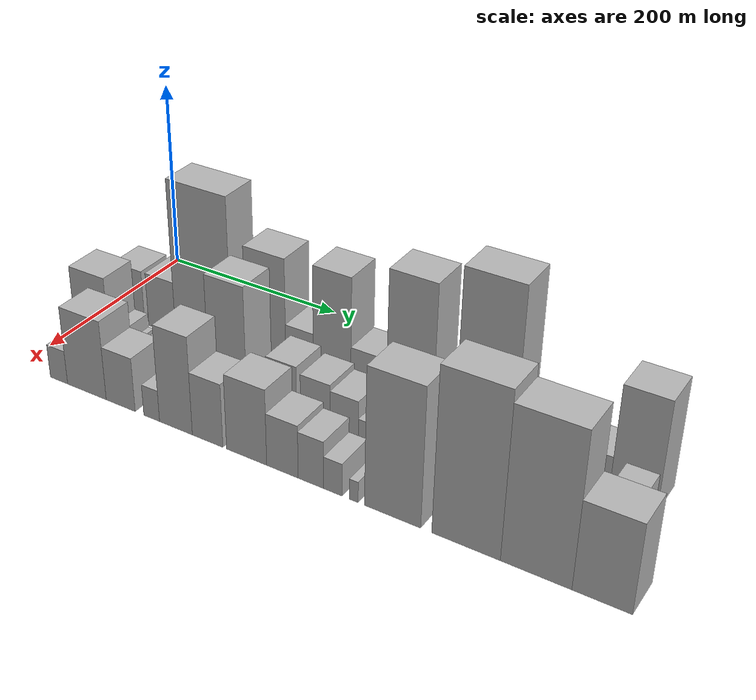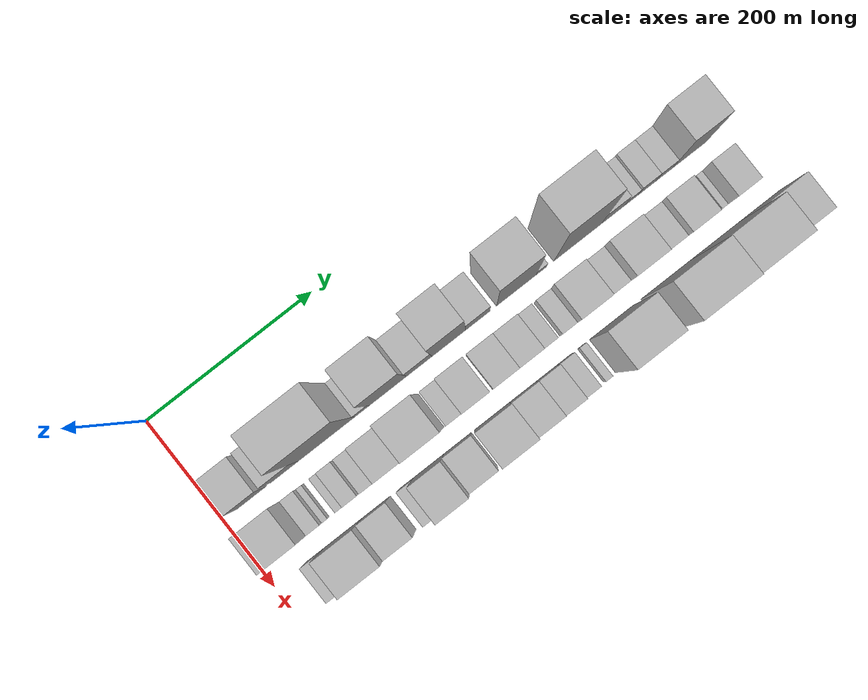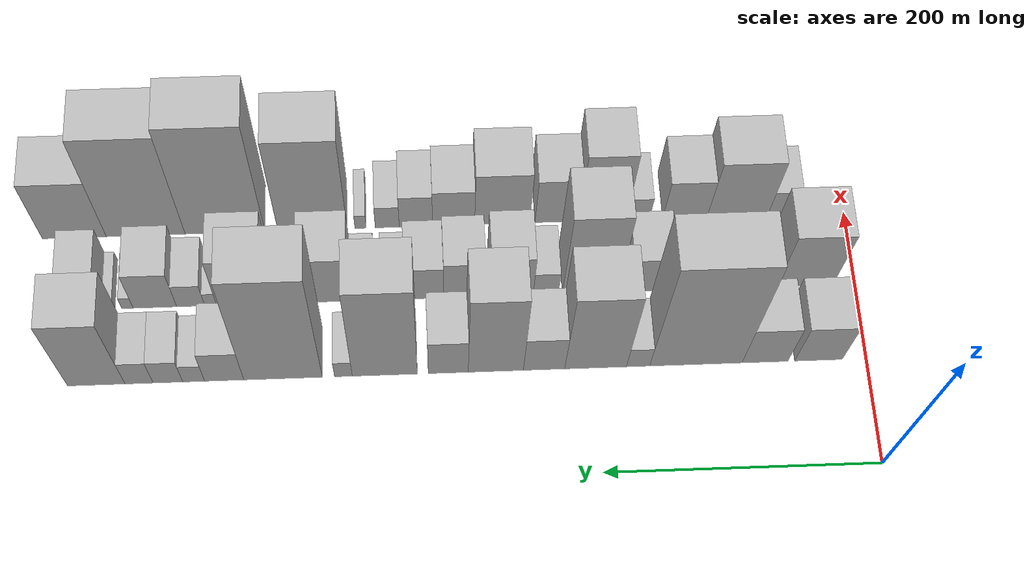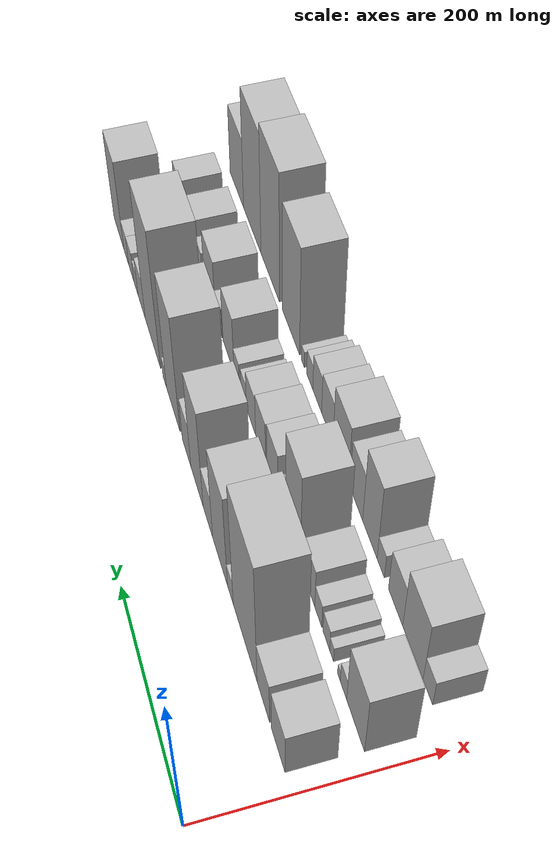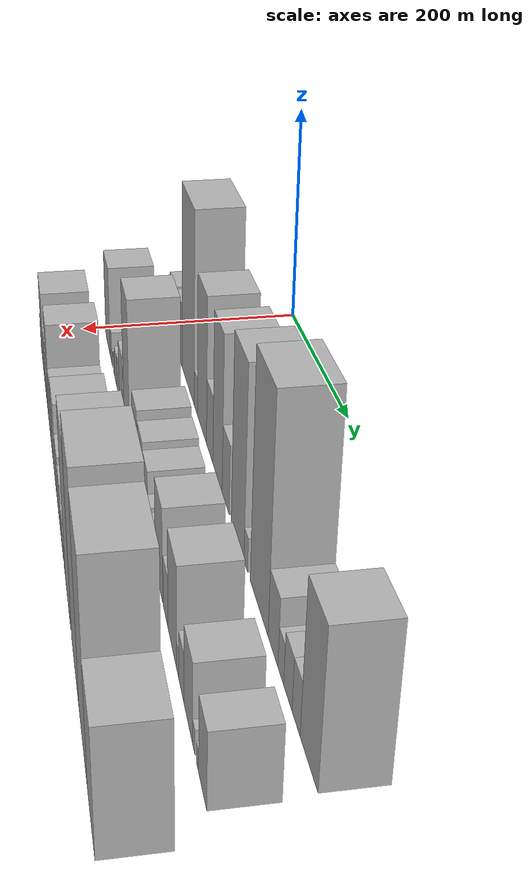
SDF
<sdf version="1.6">
 <world name="default">
  <model name="building_18">
   <static>1</static>
   <pose>100.0000 35.1680 0 0.000000 0.000000 0.000000</pose>
   <link name="link">
    <pose>0 0 30.00 0 0 0</pose>
    <collision name="collision"><geometry><box><size>40.0000 35.2167 60.0000</size></box></geometry></collision>
    <visual name="visual">
     <cast_shadows>0</cast_shadows>
     <geometry><box><size>40.0000 35.2167 60.0000</size></box></geometry>
     <material>
      <script>
       <uri>model://HANNAS_wall/materials/scripts</uri>
       <uri>model://HANNAS_wall/materials/textures</uri>
       <name>vrc/HANNAS_wall</name>
      </script>
     </material>
    </visual>
   </link>
  </model>
  <model name="building_19">
   <static>1</static>
   <pose>100.0000 74.7181 0 0.000000 0.000000 0.000000</pose>
   <link name="link">
    <pose>0 0 30.00 0 0 0</pose>
    <collision name="collision"><geometry><box><size>40.0000 33.8835 60.0000</size></box></geometry></collision>
    <visual name="visual">
     <cast_shadows>0</cast_shadows>
     <geometry><box><size>40.0000 33.8835 60.0000</size></box></geometry>
     <material>
      <script>
       <uri>model://HANNAS_wall/materials/scripts</uri>
       <uri>model://HANNAS_wall/materials/textures</uri>
       <name>vrc/HANNAS_wall</name>
      </script>
     </material>
    </visual>
   </link>
  </model>
  <model name="building_20">
   <static>1</static>
   <pose>100.0000 125.6870 0 0.000000 0.000000 0.000000</pose>
   <link name="link">
    <pose>0 0 85.50 0 0 0</pose>
    <collision name="collision"><geometry><box><size>40.0000 68.0544 171.0000</size></box></geometry></collision>
    <visual name="visual">
     <cast_shadows>0</cast_shadows>
     <geometry><box><size>40.0000 68.0544 171.0000</size></box></geometry>
     <material>
      <script>
       <uri>model://HANNAS_wall/materials/scripts</uri>
       <uri>model://HANNAS_wall/materials/textures</uri>
       <name>vrc/HANNAS_wall</name>
      </script>
     </material>
    </visual>
   </link>
  </model>
  <model name="building_21">
   <static>1</static>
   <pose>100.0000 168.3000 0 0.000000 0.000000 0.000000</pose>
   <link name="link">
    <pose>0 0 16.50 0 0 0</pose>
    <collision name="collision"><geometry><box><size>40.0000 17.1716 33.0000</size></box></geometry></collision>
    <visual name="visual">
     <cast_shadows>0</cast_shadows>
     <geometry><box><size>40.0000 17.1716 33.0000</size></box></geometry>
     <material>
      <script>
       <uri>model://HANNAS_wall/materials/scripts</uri>
       <uri>model://HANNAS_wall/materials/textures</uri>
       <name>vrc/HANNAS_wall</name>
      </script>
     </material>
    </visual>
   </link>
  </model>
  <model name="building_22">
   <static>1</static>
   <pose>100.0000 199.6199 0 0.000000 0.000000 0.000000</pose>
   <link name="link">
    <pose>0 0 63.00 0 0 0</pose>
    <collision name="collision"><geometry><box><size>40.0000 45.4680 126.0000</size></box></geometry></collision>
    <visual name="visual">
     <cast_shadows>0</cast_shadows>
     <geometry><box><size>40.0000 45.4680 126.0000</size></box></geometry>
     <material>
      <script>
       <uri>model://HANNAS_wall/materials/scripts</uri>
       <uri>model://HANNAS_wall/materials/textures</uri>
       <name>vrc/HANNAS_wall</name>
      </script>
     </material>
    </visual>
   </link>
  </model>
  <model name="building_23">
   <static>1</static>
   <pose>100.0000 237.5084 0 0.000000 0.000000 0.000000</pose>
   <link name="link">
    <pose>0 0 28.50 0 0 0</pose>
    <collision name="collision"><geometry><box><size>40.0000 30.3090 57.0000</size></box></geometry></collision>
    <visual name="visual">
     <cast_shadows>0</cast_shadows>
     <geometry><box><size>40.0000 30.3090 57.0000</size></box></geometry>
     <material>
      <script>
       <uri>model://HANNAS_wall/materials/scripts</uri>
       <uri>model://HANNAS_wall/materials/textures</uri>
       <name>vrc/HANNAS_wall</name>
      </script>
     </material>
    </visual>
   </link>
  </model>
  <model name="building_24">
   <static>1</static>
   <pose>100.0000 272.9096 0 0.000000 0.000000 0.000000</pose>
   <link name="link">
    <pose>0 0 64.50 0 0 0</pose>
    <collision name="collision"><geometry><box><size>40.0000 40.4933 129.0000</size></box></geometry></collision>
    <visual name="visual">
     <cast_shadows>0</cast_shadows>
     <geometry><box><size>40.0000 40.4933 129.0000</size></box></geometry>
     <material>
      <script>
       <uri>model://HANNAS_wall/materials/scripts</uri>
       <uri>model://HANNAS_wall/materials/textures</uri>
       <name>vrc/HANNAS_wall</name>
      </script>
     </material>
    </visual>
   </link>
  </model>
  <model name="building_25">
   <static>1</static>
   <pose>100.0000 307.8030 0 0.000000 0.000000 0.000000</pose>
   <link name="link">
    <pose>0 0 28.50 0 0 0</pose>
    <collision name="collision"><geometry><box><size>40.0000 29.2936 57.0000</size></box></geometry></collision>
    <visual name="visual">
     <cast_shadows>0</cast_shadows>
     <geometry><box><size>40.0000 29.2936 57.0000</size></box></geometry>
     <material>
      <script>
       <uri>model://HANNAS_wall/materials/scripts</uri>
       <uri>model://HANNAS_wall/materials/textures</uri>
       <name>vrc/HANNAS_wall</name>
      </script>
     </material>
    </visual>
   </link>
  </model>
  <model name="building_26">
   <static>1</static>
   <pose>100.0000 354.2889 0 0.000000 0.000000 0.000000</pose>
   <link name="link">
    <pose>0 0 75.00 0 0 0</pose>
    <collision name="collision"><geometry><box><size>40.0000 47.6782 150.0000</size></box></geometry></collision>
    <visual name="visual">
     <cast_shadows>0</cast_shadows>
     <geometry><box><size>40.0000 47.6782 150.0000</size></box></geometry>
     <material>
      <script>
       <uri>model://HANNAS_wall/materials/scripts</uri>
       <uri>model://HANNAS_wall/materials/textures</uri>
       <name>vrc/HANNAS_wall</name>
      </script>
     </material>
    </visual>
   </link>
  </model>
  <model name="building_27">
   <static>1</static>
   <pose>100.0000 384.5869 0 0.000000 0.000000 0.000000</pose>
   <link name="link">
    <pose>0 0 13.50 0 0 0</pose>
    <collision name="collision"><geometry><box><size>40.0000 12.9178 27.0000</size></box></geometry></collision>
    <visual name="visual">
     <cast_shadows>0</cast_shadows>
     <geometry><box><size>40.0000 12.9178 27.0000</size></box></geometry>
     <material>
      <script>
       <uri>model://HANNAS_wall/materials/scripts</uri>
       <uri>model://HANNAS_wall/materials/textures</uri>
       <name>vrc/HANNAS_wall</name>
      </script>
     </material>
    </visual>
   </link>
  </model>
  <model name="building_28">
   <static>1</static>
   <pose>100.0000 428.7757 0 0.000000 0.000000 0.000000</pose>
   <link name="link">
    <pose>0 0 87.00 0 0 0</pose>
    <collision name="collision"><geometry><box><size>40.0000 57.4597 174.0000</size></box></geometry></collision>
    <visual name="visual">
     <cast_shadows>0</cast_shadows>
     <geometry><box><size>40.0000 57.4597 174.0000</size></box></geometry>
     <material>
      <script>
       <uri>model://HANNAS_wall/materials/scripts</uri>
       <uri>model://HANNAS_wall/materials/textures</uri>
       <name>vrc/HANNAS_wall</name>
      </script>
     </material>
    </visual>
   </link>
  </model>
  <model name="building_29">
   <static>1</static>
   <pose>100.0000 471.7689 0 0.000000 0.000000 0.000000</pose>
   <link name="link">
    <pose>0 0 25.50 0 0 0</pose>
    <collision name="collision"><geometry><box><size>40.0000 28.5268 51.0000</size></box></geometry></collision>
    <visual name="visual">
     <cast_shadows>0</cast_shadows>
     <geometry><box><size>40.0000 28.5268 51.0000</size></box></geometry>
     <material>
      <script>
       <uri>model://HANNAS_wall/materials/scripts</uri>
       <uri>model://HANNAS_wall/materials/textures</uri>
       <name>vrc/HANNAS_wall</name>
      </script>
     </material>
    </visual>
   </link>
  </model>
  <model name="building_30">
   <static>1</static>
   <pose>100.0000 494.0220 0 0.000000 0.000000 0.000000</pose>
   <link name="link">
    <pose>0 0 15.00 0 0 0</pose>
    <collision name="collision"><geometry><box><size>40.0000 15.9793 30.0000</size></box></geometry></collision>
    <visual name="visual">
     <cast_shadows>0</cast_shadows>
     <geometry><box><size>40.0000 15.9793 30.0000</size></box></geometry>
     <material>
      <script>
       <uri>model://HANNAS_wall/materials/scripts</uri>
       <uri>model://HANNAS_wall/materials/textures</uri>
       <name>vrc/HANNAS_wall</name>
      </script>
     </material>
    </visual>
   </link>
  </model>
  <model name="building_31">
   <static>1</static>
   <pose>100.0000 512.8624 0 0.000000 0.000000 0.000000</pose>
   <link name="link">
    <pose>0 0 19.50 0 0 0</pose>
    <collision name="collision"><geometry><box><size>40.0000 21.7016 39.0000</size></box></geometry></collision>
    <visual name="visual">
     <cast_shadows>0</cast_shadows>
     <geometry><box><size>40.0000 21.7016 39.0000</size></box></geometry>
     <material>
      <script>
       <uri>model://HANNAS_wall/materials/scripts</uri>
       <uri>model://HANNAS_wall/materials/textures</uri>
       <name>vrc/HANNAS_wall</name>
      </script>
     </material>
    </visual>
   </link>
  </model>
  <model name="building_32">
   <static>1</static>
   <pose>100.0000 533.9631 0 0.000000 0.000000 0.000000</pose>
   <link name="link">
    <pose>0 0 19.50 0 0 0</pose>
    <collision name="collision"><geometry><box><size>40.0000 20.4997 39.0000</size></box></geometry></collision>
    <visual name="visual">
     <cast_shadows>0</cast_shadows>
     <geometry><box><size>40.0000 20.4997 39.0000</size></box></geometry>
     <material>
      <script>
       <uri>model://HANNAS_wall/materials/scripts</uri>
       <uri>model://HANNAS_wall/materials/textures</uri>
       <name>vrc/HANNAS_wall</name>
      </script>
     </material>
    </visual>
   </link>
  </model>
  <model name="building_33">
   <static>1</static>
   <pose>100.0000 565.1274 0 0.000000 0.000000 0.000000</pose>
   <link name="link">
    <pose>0 0 55.50 0 0 0</pose>
    <collision name="collision"><geometry><box><size>40.0000 41.8290 111.0000</size></box></geometry></collision>
    <visual name="visual">
     <cast_shadows>0</cast_shadows>
     <geometry><box><size>40.0000 41.8290 111.0000</size></box></geometry>
     <material>
      <script>
       <uri>model://HANNAS_wall/materials/scripts</uri>
       <uri>model://HANNAS_wall/materials/textures</uri>
       <name>vrc/HANNAS_wall</name>
      </script>
     </material>
    </visual>
   </link>
  </model>
  <model name="building_51">
   <static>1</static>
   <pose>160.0000 37.7399 0 0.000000 0.000000 0.000000</pose>
   <link name="link">
    <pose>0 0 42.00 0 0 0</pose>
    <collision name="collision"><geometry><box><size>40.0000 42.5352 84.0000</size></box></geometry></collision>
    <visual name="visual">
     <cast_shadows>0</cast_shadows>
     <geometry><box><size>40.0000 42.5352 84.0000</size></box></geometry>
     <material>
      <script>
       <uri>model://HANNAS_wall/materials/scripts</uri>
       <uri>model://HANNAS_wall/materials/textures</uri>
       <name>vrc/HANNAS_wall</name>
      </script>
     </material>
    </visual>
   </link>
  </model>
  <model name="building_52">
   <static>1</static>
   <pose>160.0000 66.9542 0 0.000000 0.000000 0.000000</pose>
   <link name="link">
    <pose>0 0 15.00 0 0 0</pose>
    <collision name="collision"><geometry><box><size>40.0000 15.8933 30.0000</size></box></geometry></collision>
    <visual name="visual">
     <cast_shadows>0</cast_shadows>
     <geometry><box><size>40.0000 15.8933 30.0000</size></box></geometry>
     <material>
      <script>
       <uri>model://HANNAS_wall/materials/scripts</uri>
       <uri>model://HANNAS_wall/materials/textures</uri>
       <name>vrc/HANNAS_wall</name>
      </script>
     </material>
    </visual>
   </link>
  </model>
  <model name="building_53">
   <static>1</static>
   <pose>160.0000 78.2024 0 0.000000 0.000000 0.000000</pose>
   <link name="link">
    <pose>0 0 7.50 0 0 0</pose>
    <collision name="collision"><geometry><box><size>40.0000 6.6032 15.0000</size></box></geometry></collision>
    <visual name="visual">
     <cast_shadows>0</cast_shadows>
     <geometry><box><size>40.0000 6.6032 15.0000</size></box></geometry>
     <material>
      <script>
       <uri>model://HANNAS_wall/materials/scripts</uri>
       <uri>model://HANNAS_wall/materials/textures</uri>
       <name>vrc/HANNAS_wall</name>
      </script>
     </material>
    </visual>
   </link>
  </model>
  <model name="building_54">
   <static>1</static>
   <pose>160.0000 96.3459 0 0.000000 0.000000 0.000000</pose>
   <link name="link">
    <pose>0 0 10.50 0 0 0</pose>
    <collision name="collision"><geometry><box><size>40.0000 9.6839 21.0000</size></box></geometry></collision>
    <visual name="visual">
     <cast_shadows>0</cast_shadows>
     <geometry><box><size>40.0000 9.6839 21.0000</size></box></geometry>
     <material>
      <script>
       <uri>model://HANNAS_wall/materials/scripts</uri>
       <uri>model://HANNAS_wall/materials/textures</uri>
       <name>vrc/HANNAS_wall</name>
      </script>
     </material>
    </visual>
   </link>
  </model>
  <model name="building_55">
   <static>1</static>
   <pose>160.0000 109.8515 0 0.000000 0.000000 0.000000</pose>
   <link name="link">
    <pose>0 0 15.00 0 0 0</pose>
    <collision name="collision"><geometry><box><size>40.0000 17.3273 30.0000</size></box></geometry></collision>
    <visual name="visual">
     <cast_shadows>0</cast_shadows>
     <geometry><box><size>40.0000 17.3273 30.0000</size></box></geometry>
     <material>
      <script>
       <uri>model://HANNAS_wall/materials/scripts</uri>
       <uri>model://HANNAS_wall/materials/textures</uri>
       <name>vrc/HANNAS_wall</name>
      </script>
     </material>
    </visual>
   </link>
  </model>
  <model name="building_56">
   <static>1</static>
   <pose>160.0000 130.6696 0 0.000000 0.000000 0.000000</pose>
   <link name="link">
    <pose>0 0 16.50 0 0 0</pose>
    <collision name="collision"><geometry><box><size>40.0000 18.3089 33.0000</size></box></geometry></collision>
    <visual name="visual">
     <cast_shadows>0</cast_shadows>
     <geometry><box><size>40.0000 18.3089 33.0000</size></box></geometry>
     <material>
      <script>
       <uri>model://HANNAS_wall/materials/scripts</uri>
       <uri>model://HANNAS_wall/materials/textures</uri>
       <name>vrc/HANNAS_wall</name>
      </script>
     </material>
    </visual>
   </link>
  </model>
  <model name="building_57">
   <static>1</static>
   <pose>160.0000 155.4425 0 0.000000 0.000000 0.000000</pose>
   <link name="link">
    <pose>0 0 27.00 0 0 0</pose>
    <collision name="collision"><geometry><box><size>40.0000 31.2368 54.0000</size></box></geometry></collision>
    <visual name="visual">
     <cast_shadows>0</cast_shadows>
     <geometry><box><size>40.0000 31.2368 54.0000</size></box></geometry>
     <material>
      <script>
       <uri>model://HANNAS_wall/materials/scripts</uri>
       <uri>model://HANNAS_wall/materials/textures</uri>
       <name>vrc/HANNAS_wall</name>
      </script>
     </material>
    </visual>
   </link>
  </model>
  <model name="building_58">
   <static>1</static>
   <pose>160.0000 199.0687 0 0.000000 0.000000 0.000000</pose>
   <link name="link">
    <pose>0 0 63.00 0 0 0</pose>
    <collision name="collision"><geometry><box><size>40.0000 42.0157 126.0000</size></box></geometry></collision>
    <visual name="visual">
     <cast_shadows>0</cast_shadows>
     <geometry><box><size>40.0000 42.0157 126.0000</size></box></geometry>
     <material>
      <script>
       <uri>model://HANNAS_wall/materials/scripts</uri>
       <uri>model://HANNAS_wall/materials/textures</uri>
       <name>vrc/HANNAS_wall</name>
      </script>
     </material>
    </visual>
   </link>
  </model>
  <model name="building_59">
   <static>1</static>
   <pose>160.0000 232.5565 0 0.000000 0.000000 0.000000</pose>
   <link name="link">
    <pose>0 0 18.00 0 0 0</pose>
    <collision name="collision"><geometry><box><size>40.0000 18.9597 36.0000</size></box></geometry></collision>
    <visual name="visual">
     <cast_shadows>0</cast_shadows>
     <geometry><box><size>40.0000 18.9597 36.0000</size></box></geometry>
     <material>
      <script>
       <uri>model://HANNAS_wall/materials/scripts</uri>
       <uri>model://HANNAS_wall/materials/textures</uri>
       <name>vrc/HANNAS_wall</name>
      </script>
     </material>
    </visual>
   </link>
  </model>
  <model name="building_60">
   <static>1</static>
   <pose>160.0000 258.1782 0 0.000000 0.000000 0.000000</pose>
   <link name="link">
    <pose>0 0 31.50 0 0 0</pose>
    <collision name="collision"><geometry><box><size>40.0000 32.2838 63.0000</size></box></geometry></collision>
    <visual name="visual">
     <cast_shadows>0</cast_shadows>
     <geometry><box><size>40.0000 32.2838 63.0000</size></box></geometry>
     <material>
      <script>
       <uri>model://HANNAS_wall/materials/scripts</uri>
       <uri>model://HANNAS_wall/materials/textures</uri>
       <name>vrc/HANNAS_wall</name>
      </script>
     </material>
    </visual>
   </link>
  </model>
  <model name="building_61">
   <static>1</static>
   <pose>160.0000 293.7199 0 0.000000 0.000000 0.000000</pose>
   <link name="link">
    <pose>0 0 28.50 0 0 0</pose>
    <collision name="collision"><geometry><box><size>40.0000 30.7995 57.0000</size></box></geometry></collision>
    <visual name="visual">
     <cast_shadows>0</cast_shadows>
     <geometry><box><size>40.0000 30.7995 57.0000</size></box></geometry>
     <material>
      <script>
       <uri>model://HANNAS_wall/materials/scripts</uri>
       <uri>model://HANNAS_wall/materials/textures</uri>
       <name>vrc/HANNAS_wall</name>
      </script>
     </material>
    </visual>
   </link>
  </model>
  <model name="building_62">
   <static>1</static>
   <pose>160.0000 323.5536 0 0.000000 0.000000 0.000000</pose>
   <link name="link">
    <pose>0 0 25.50 0 0 0</pose>
    <collision name="collision"><geometry><box><size>40.0000 28.8681 51.0000</size></box></geometry></collision>
    <visual name="visual">
     <cast_shadows>0</cast_shadows>
     <geometry><box><size>40.0000 28.8681 51.0000</size></box></geometry>
     <material>
      <script>
       <uri>model://HANNAS_wall/materials/scripts</uri>
       <uri>model://HANNAS_wall/materials/textures</uri>
       <name>vrc/HANNAS_wall</name>
      </script>
     </material>
    </visual>
   </link>
  </model>
  <model name="building_63">
   <static>1</static>
   <pose>160.0000 346.7336 0 0.000000 0.000000 0.000000</pose>
   <link name="link">
    <pose>0 0 16.50 0 0 0</pose>
    <collision name="collision"><geometry><box><size>40.0000 17.4918 33.0000</size></box></geometry></collision>
    <visual name="visual">
     <cast_shadows>0</cast_shadows>
     <geometry><box><size>40.0000 17.4918 33.0000</size></box></geometry>
     <material>
      <script>
       <uri>model://HANNAS_wall/materials/scripts</uri>
       <uri>model://HANNAS_wall/materials/textures</uri>
       <name>vrc/HANNAS_wall</name>
      </script>
     </material>
    </visual>
   </link>
  </model>
  <model name="building_64">
   <static>1</static>
   <pose>160.0000 369.3459 0 0.000000 0.000000 0.000000</pose>
   <link name="link">
    <pose>0 0 16.50 0 0 0</pose>
    <collision name="collision"><geometry><box><size>40.0000 17.7330 33.0000</size></box></geometry></collision>
    <visual name="visual">
     <cast_shadows>0</cast_shadows>
     <geometry><box><size>40.0000 17.7330 33.0000</size></box></geometry>
     <material>
      <script>
       <uri>model://HANNAS_wall/materials/scripts</uri>
       <uri>model://HANNAS_wall/materials/textures</uri>
       <name>vrc/HANNAS_wall</name>
      </script>
     </material>
    </visual>
   </link>
  </model>
  <model name="building_65">
   <static>1</static>
   <pose>160.0000 396.4069 0 0.000000 0.000000 0.000000</pose>
   <link name="link">
    <pose>0 0 36.00 0 0 0</pose>
    <collision name="collision"><geometry><box><size>40.0000 36.3889 72.0000</size></box></geometry></collision>
    <visual name="visual">
     <cast_shadows>0</cast_shadows>
     <geometry><box><size>40.0000 36.3889 72.0000</size></box></geometry>
     <material>
      <script>
       <uri>model://HANNAS_wall/materials/scripts</uri>
       <uri>model://HANNAS_wall/materials/textures</uri>
       <name>vrc/HANNAS_wall</name>
      </script>
     </material>
    </visual>
   </link>
  </model>
  <model name="building_66">
   <static>1</static>
   <pose>160.0000 428.9386 0 0.000000 0.000000 0.000000</pose>
   <link name="link">
    <pose>0 0 19.50 0 0 0</pose>
    <collision name="collision"><geometry><box><size>40.0000 22.6745 39.0000</size></box></geometry></collision>
    <visual name="visual">
     <cast_shadows>0</cast_shadows>
     <geometry><box><size>40.0000 22.6745 39.0000</size></box></geometry>
     <material>
      <script>
       <uri>model://HANNAS_wall/materials/scripts</uri>
       <uri>model://HANNAS_wall/materials/textures</uri>
       <name>vrc/HANNAS_wall</name>
      </script>
     </material>
    </visual>
   </link>
  </model>
  <model name="building_67">
   <static>1</static>
   <pose>160.0000 459.4966 0 0.000000 0.000000 0.000000</pose>
   <link name="link">
    <pose>0 0 37.50 0 0 0</pose>
    <collision name="collision"><geometry><box><size>40.0000 38.4415 75.0000</size></box></geometry></collision>
    <visual name="visual">
     <cast_shadows>0</cast_shadows>
     <geometry><box><size>40.0000 38.4415 75.0000</size></box></geometry>
     <material>
      <script>
       <uri>model://HANNAS_wall/materials/scripts</uri>
       <uri>model://HANNAS_wall/materials/textures</uri>
       <name>vrc/HANNAS_wall</name>
      </script>
     </material>
    </visual>
   </link>
  </model>
  <model name="building_68">
   <static>1</static>
   <pose>160.0000 483.1227 0 0.000000 0.000000 0.000000</pose>
   <link name="link">
    <pose>0 0 10.50 0 0 0</pose>
    <collision name="collision"><geometry><box><size>40.0000 8.8106 21.0000</size></box></geometry></collision>
    <visual name="visual">
     <cast_shadows>0</cast_shadows>
     <geometry><box><size>40.0000 8.8106 21.0000</size></box></geometry>
     <material>
      <script>
       <uri>model://HANNAS_wall/materials/scripts</uri>
       <uri>model://HANNAS_wall/materials/textures</uri>
       <name>vrc/HANNAS_wall</name>
      </script>
     </material>
    </visual>
   </link>
  </model>
  <model name="building_69">
   <static>1</static>
   <pose>160.0000 497.9858 0 0.000000 0.000000 0.000000</pose>
   <link name="link">
    <pose>0 0 18.00 0 0 0</pose>
    <collision name="collision"><geometry><box><size>40.0000 20.9155 36.0000</size></box></geometry></collision>
    <visual name="visual">
     <cast_shadows>0</cast_shadows>
     <geometry><box><size>40.0000 20.9155 36.0000</size></box></geometry>
     <material>
      <script>
       <uri>model://HANNAS_wall/materials/scripts</uri>
       <uri>model://HANNAS_wall/materials/textures</uri>
       <name>vrc/HANNAS_wall</name>
      </script>
     </material>
    </visual>
   </link>
  </model>
  <model name="building_70">
   <static>1</static>
   <pose>160.0000 524.6616 0 0.000000 0.000000 0.000000</pose>
   <link name="link">
    <pose>0 0 28.50 0 0 0</pose>
    <collision name="collision"><geometry><box><size>40.0000 32.4362 57.0000</size></box></geometry></collision>
    <visual name="visual">
     <cast_shadows>0</cast_shadows>
     <geometry><box><size>40.0000 32.4362 57.0000</size></box></geometry>
     <material>
      <script>
       <uri>model://HANNAS_wall/materials/scripts</uri>
       <uri>model://HANNAS_wall/materials/textures</uri>
       <name>vrc/HANNAS_wall</name>
      </script>
     </material>
    </visual>
   </link>
  </model>
  <model name="building_71">
   <static>1</static>
   <pose>160.0000 545.1387 0 0.000000 0.000000 0.000000</pose>
   <link name="link">
    <pose>0 0 9.00 0 0 0</pose>
    <collision name="collision"><geometry><box><size>40.0000 8.5180 18.0000</size></box></geometry></collision>
    <visual name="visual">
     <cast_shadows>0</cast_shadows>
     <geometry><box><size>40.0000 8.5180 18.0000</size></box></geometry>
     <material>
      <script>
       <uri>model://HANNAS_wall/materials/scripts</uri>
       <uri>model://HANNAS_wall/materials/textures</uri>
       <name>vrc/HANNAS_wall</name>
      </script>
     </material>
    </visual>
   </link>
  </model>
  <model name="building_72">
   <static>1</static>
   <pose>160.0000 558.0651 0 0.000000 0.000000 0.000000</pose>
   <link name="link">
    <pose>0 0 7.50 0 0 0</pose>
    <collision name="collision"><geometry><box><size>40.0000 7.3349 15.0000</size></box></geometry></collision>
    <visual name="visual">
     <cast_shadows>0</cast_shadows>
     <geometry><box><size>40.0000 7.3349 15.0000</size></box></geometry>
     <material>
      <script>
       <uri>model://HANNAS_wall/materials/scripts</uri>
       <uri>model://HANNAS_wall/materials/textures</uri>
       <name>vrc/HANNAS_wall</name>
      </script>
     </material>
    </visual>
   </link>
  </model>
  <model name="building_73">
   <static>1</static>
   <pose>160.0000 575.5154 0 0.000000 0.000000 0.000000</pose>
   <link name="link">
    <pose>0 0 27.00 0 0 0</pose>
    <collision name="collision"><geometry><box><size>40.0000 27.5657 54.0000</size></box></geometry></collision>
    <visual name="visual">
     <cast_shadows>0</cast_shadows>
     <geometry><box><size>40.0000 27.5657 54.0000</size></box></geometry>
     <material>
      <script>
       <uri>model://HANNAS_wall/materials/scripts</uri>
       <uri>model://HANNAS_wall/materials/textures</uri>
       <name>vrc/HANNAS_wall</name>
      </script>
     </material>
    </visual>
   </link>
  </model>
  <model name="building_94">
   <static>1</static>
   <pose>220.0000 47.8133 0 0.000000 0.000000 0.000000</pose>
   <link name="link">
    <pose>0 0 18.00 0 0 0</pose>
    <collision name="collision"><geometry><box><size>40.0000 21.2872 36.0000</size></box></geometry></collision>
    <visual name="visual">
     <cast_shadows>0</cast_shadows>
     <geometry><box><size>40.0000 21.2872 36.0000</size></box></geometry>
     <material>
      <script>
       <uri>model://HANNAS_wall/materials/scripts</uri>
       <uri>model://HANNAS_wall/materials/textures</uri>
       <name>vrc/HANNAS_wall</name>
      </script>
     </material>
    </visual>
   </link>
  </model>
  <model name="building_95">
   <static>1</static>
   <pose>220.0000 81.8287 0 0.000000 0.000000 0.000000</pose>
   <link name="link">
    <pose>0 0 42.00 0 0 0</pose>
    <collision name="collision"><geometry><box><size>40.0000 46.7437 84.0000</size></box></geometry></collision>
    <visual name="visual">
     <cast_shadows>0</cast_shadows>
     <geometry><box><size>40.0000 46.7437 84.0000</size></box></geometry>
     <material>
      <script>
       <uri>model://HANNAS_wall/materials/scripts</uri>
       <uri>model://HANNAS_wall/materials/textures</uri>
       <name>vrc/HANNAS_wall</name>
      </script>
     </material>
    </visual>
   </link>
  </model>
  <model name="building_96">
   <static>1</static>
   <pose>220.0000 122.2105 0 0.000000 0.000000 0.000000</pose>
   <link name="link">
    <pose>0 0 28.50 0 0 0</pose>
    <collision name="collision"><geometry><box><size>40.0000 34.0200 57.0000</size></box></geometry></collision>
    <visual name="visual">
     <cast_shadows>0</cast_shadows>
     <geometry><box><size>40.0000 34.0200 57.0000</size></box></geometry>
     <material>
      <script>
       <uri>model://HANNAS_wall/materials/scripts</uri>
       <uri>model://HANNAS_wall/materials/textures</uri>
       <name>vrc/HANNAS_wall</name>
      </script>
     </material>
    </visual>
   </link>
  </model>
  <model name="building_97">
   <static>1</static>
   <pose>220.0000 158.1934 0 0.000000 0.000000 0.000000</pose>
   <link name="link">
    <pose>0 0 16.50 0 0 0</pose>
    <collision name="collision"><geometry><box><size>40.0000 17.9457 33.0000</size></box></geometry></collision>
    <visual name="visual">
     <cast_shadows>0</cast_shadows>
     <geometry><box><size>40.0000 17.9457 33.0000</size></box></geometry>
     <material>
      <script>
       <uri>model://HANNAS_wall/materials/scripts</uri>
       <uri>model://HANNAS_wall/materials/textures</uri>
       <name>vrc/HANNAS_wall</name>
      </script>
     </material>
    </visual>
   </link>
  </model>
  <model name="building_98">
   <static>1</static>
   <pose>220.0000 185.5304 0 0.000000 0.000000 0.000000</pose>
   <link name="link">
    <pose>0 0 51.00 0 0 0</pose>
    <collision name="collision"><geometry><box><size>40.0000 36.7283 102.0000</size></box></geometry></collision>
    <visual name="visual">
     <cast_shadows>0</cast_shadows>
     <geometry><box><size>40.0000 36.7283 102.0000</size></box></geometry>
     <material>
      <script>
       <uri>model://HANNAS_wall/materials/scripts</uri>
       <uri>model://HANNAS_wall/materials/textures</uri>
       <name>vrc/HANNAS_wall</name>
      </script>
     </material>
    </visual>
   </link>
  </model>
  <model name="building_99">
   <static>1</static>
   <pose>220.0000 220.5232 0 0.000000 0.000000 0.000000</pose>
   <link name="link">
    <pose>0 0 33.00 0 0 0</pose>
    <collision name="collision"><geometry><box><size>40.0000 33.2572 66.0000</size></box></geometry></collision>
    <visual name="visual">
     <cast_shadows>0</cast_shadows>
     <geometry><box><size>40.0000 33.2572 66.0000</size></box></geometry>
     <material>
      <script>
       <uri>model://HANNAS_wall/materials/scripts</uri>
       <uri>model://HANNAS_wall/materials/textures</uri>
       <name>vrc/HANNAS_wall</name>
      </script>
     </material>
    </visual>
   </link>
  </model>
  <model name="building_100">
   <static>1</static>
   <pose>220.0000 262.2373 0 0.000000 0.000000 0.000000</pose>
   <link name="link">
    <pose>0 0 39.00 0 0 0</pose>
    <collision name="collision"><geometry><box><size>40.0000 42.1710 78.0000</size></box></geometry></collision>
    <visual name="visual">
     <cast_shadows>0</cast_shadows>
     <geometry><box><size>40.0000 42.1710 78.0000</size></box></geometry>
     <material>
      <script>
       <uri>model://HANNAS_wall/materials/scripts</uri>
       <uri>model://HANNAS_wall/materials/textures</uri>
       <name>vrc/HANNAS_wall</name>
      </script>
     </material>
    </visual>
   </link>
  </model>
  <model name="building_101">
   <static>1</static>
   <pose>220.0000 299.4037 0 0.000000 0.000000 0.000000</pose>
   <link name="link">
    <pose>0 0 27.00 0 0 0</pose>
    <collision name="collision"><geometry><box><size>40.0000 32.1618 54.0000</size></box></geometry></collision>
    <visual name="visual">
     <cast_shadows>0</cast_shadows>
     <geometry><box><size>40.0000 32.1618 54.0000</size></box></geometry>
     <material>
      <script>
       <uri>model://HANNAS_wall/materials/scripts</uri>
       <uri>model://HANNAS_wall/materials/textures</uri>
       <name>vrc/HANNAS_wall</name>
      </script>
     </material>
    </visual>
   </link>
  </model>
  <model name="building_102">
   <static>1</static>
   <pose>220.0000 328.1563 0 0.000000 0.000000 0.000000</pose>
   <link name="link">
    <pose>0 0 24.00 0 0 0</pose>
    <collision name="collision"><geometry><box><size>40.0000 25.3433 48.0000</size></box></geometry></collision>
    <visual name="visual">
     <cast_shadows>0</cast_shadows>
     <geometry><box><size>40.0000 25.3433 48.0000</size></box></geometry>
     <material>
      <script>
       <uri>model://HANNAS_wall/materials/scripts</uri>
       <uri>model://HANNAS_wall/materials/textures</uri>
       <name>vrc/HANNAS_wall</name>
      </script>
     </material>
    </visual>
   </link>
  </model>
  <model name="building_103">
   <static>1</static>
   <pose>220.0000 349.9554 0 0.000000 0.000000 0.000000</pose>
   <link name="link">
    <pose>0 0 16.50 0 0 0</pose>
    <collision name="collision"><geometry><box><size>40.0000 18.2548 33.0000</size></box></geometry></collision>
    <visual name="visual">
     <cast_shadows>0</cast_shadows>
     <geometry><box><size>40.0000 18.2548 33.0000</size></box></geometry>
     <material>
      <script>
       <uri>model://HANNAS_wall/materials/scripts</uri>
       <uri>model://HANNAS_wall/materials/textures</uri>
       <name>vrc/HANNAS_wall</name>
      </script>
     </material>
    </visual>
   </link>
  </model>
  <model name="building_104">
   <static>1</static>
   <pose>220.0000 370.3349 0 0.000000 0.000000 0.000000</pose>
   <link name="link">
    <pose>0 0 10.50 0 0 0</pose>
    <collision name="collision"><geometry><box><size>40.0000 8.5043 21.0000</size></box></geometry></collision>
    <visual name="visual">
     <cast_shadows>0</cast_shadows>
     <geometry><box><size>40.0000 8.5043 21.0000</size></box></geometry>
     <material>
      <script>
       <uri>model://HANNAS_wall/materials/scripts</uri>
       <uri>model://HANNAS_wall/materials/textures</uri>
       <name>vrc/HANNAS_wall</name>
      </script>
     </material>
    </visual>
   </link>
  </model>
  <model name="building_105">
   <static>1</static>
   <pose>220.0000 406.9719 0 0.000000 0.000000 0.000000</pose>
   <link name="link">
    <pose>0 0 69.00 0 0 0</pose>
    <collision name="collision"><geometry><box><size>40.0000 52.7697 138.0000</size></box></geometry></collision>
    <visual name="visual">
     <cast_shadows>0</cast_shadows>
     <geometry><box><size>40.0000 52.7697 138.0000</size></box></geometry>
     <material>
      <script>
       <uri>model://HANNAS_wall/materials/scripts</uri>
       <uri>model://HANNAS_wall/materials/textures</uri>
       <name>vrc/HANNAS_wall</name>
      </script>
     </material>
    </visual>
   </link>
  </model>
  <model name="building_106">
   <static>1</static>
   <pose>220.0000 473.6798 0 0.000000 0.000000 0.000000</pose>
   <link name="link">
    <pose>0 0 81.00 0 0 0</pose>
    <collision name="collision"><geometry><box><size>40.0000 60.6459 162.0000</size></box></geometry></collision>
    <visual name="visual">
     <cast_shadows>0</cast_shadows>
     <geometry><box><size>40.0000 60.6459 162.0000</size></box></geometry>
     <material>
      <script>
       <uri>model://HANNAS_wall/materials/scripts</uri>
       <uri>model://HANNAS_wall/materials/textures</uri>
       <name>vrc/HANNAS_wall</name>
      </script>
     </material>
    </visual>
   </link>
  </model>
  <model name="building_107">
   <static>1</static>
   <pose>220.0000 533.9775 0 0.000000 0.000000 0.000000</pose>
   <link name="link">
    <pose>0 0 75.00 0 0 0</pose>
    <collision name="collision"><geometry><box><size>40.0000 59.9495 150.0000</size></box></geometry></collision>
    <visual name="visual">
     <cast_shadows>0</cast_shadows>
     <geometry><box><size>40.0000 59.9495 150.0000</size></box></geometry>
     <material>
      <script>
       <uri>model://HANNAS_wall/materials/scripts</uri>
       <uri>model://HANNAS_wall/materials/textures</uri>
       <name>vrc/HANNAS_wall</name>
      </script>
     </material>
    </visual>
   </link>
  </model>
  <model name="building_108">
   <static>1</static>
   <pose>220.0000 588.2146 0 0.000000 0.000000 0.000000</pose>
   <link name="link">
    <pose>0 0 43.50 0 0 0</pose>
    <collision name="collision"><geometry><box><size>40.0000 48.5248 87.0000</size></box></geometry></collision>
    <visual name="visual">
     <cast_shadows>0</cast_shadows>
     <geometry><box><size>40.0000 48.5248 87.0000</size></box></geometry>
     <material>
      <script>
       <uri>model://HANNAS_wall/materials/scripts</uri>
       <uri>model://HANNAS_wall/materials/textures</uri>
       <name>vrc/HANNAS_wall</name>
      </script>
     </material>
    </visual>
   </link>
  </model>
 </world>
</sdf>
